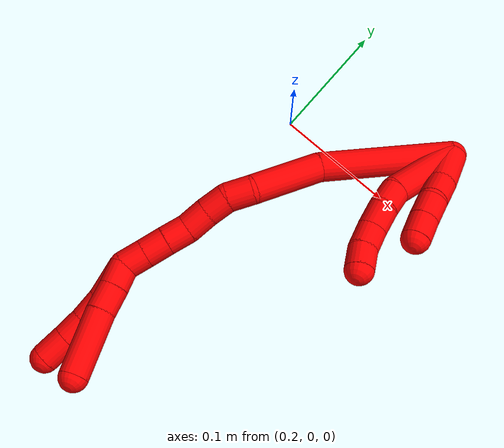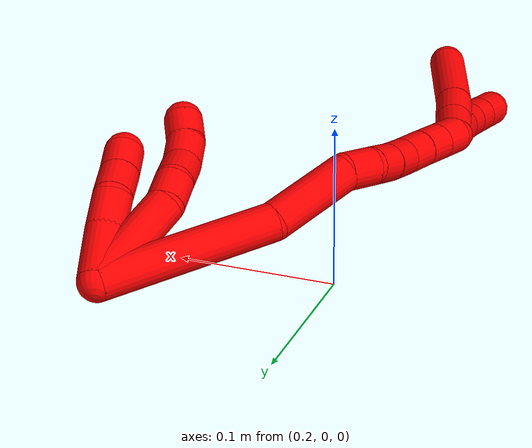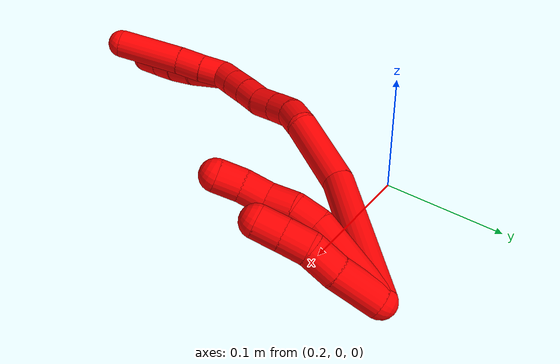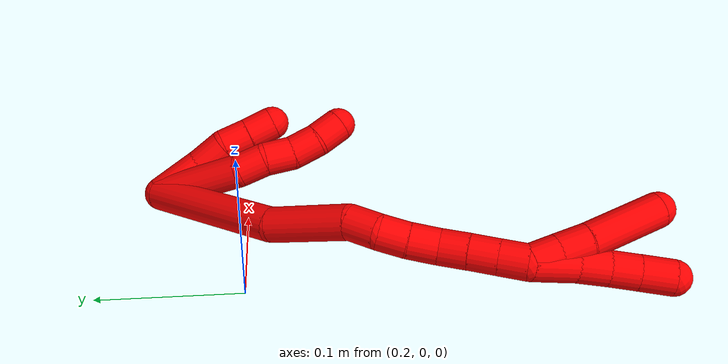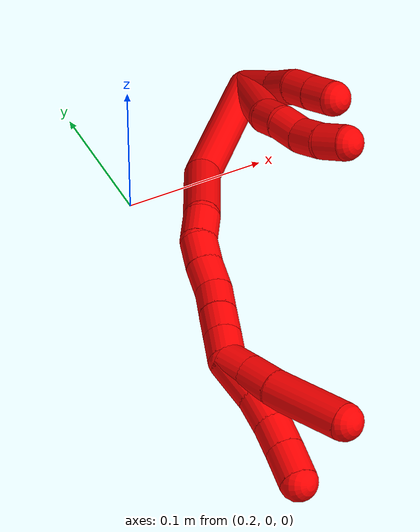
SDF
<sdf version="1.7">
 <world name="default">
  <model name="2">
   <static>0</static>
   <link name="2">
    <collision name="collision-cylinder-e_1_2_8">
     <pose>0.007614 -0.015639 -0.029075 2.64811 0.226669 0.848862</pose>
     <geometry><cylinder><radius>0.0125</radius><length>0.067761</length></cylinder></geometry>
     <surface>
      <friction><ode><mu>1.16</mu><mu2>1.16</mu2><slip1>0</slip1><slip2>0</slip2></ode></friction>
      <contact><ode><kp>1e+06</kp><kd>1</kd><max_vel>0</max_vel><min_depth>0.001</min_depth></ode></contact>
     </surface>
    </collision>
    <visual name="visual-cylinder-e_1_2_8">
     <pose>0.007614 -0.015639 -0.029075 2.64811 0.226669 0.848862</pose>
     <geometry><cylinder><radius>0.0125</radius><length>0.067761</length></cylinder></geometry>
     <material><ambient>1 0 0 1</ambient></material>
    </visual>
    <collision name="collision-cylinder-e_2_8_9">
     <pose>0.015339 -0.033477 -0.068029 2.92248 0.010993 0.099863</pose>
     <geometry><cylinder><radius>0.0125</radius><length>0.020244</length></cylinder></geometry>
     <surface>
      <friction><ode><mu>1.16</mu><mu2>1.16</mu2><slip1>0</slip1><slip2>0</slip2></ode></friction>
      <contact><ode><kp>1e+06</kp><kd>1</kd><max_vel>0</max_vel><min_depth>0.001</min_depth></ode></contact>
     </surface>
    </collision>
    <visual name="visual-cylinder-e_2_8_9">
     <pose>0.015339 -0.033477 -0.068029 2.92248 0.010993 0.099863</pose>
     <geometry><cylinder><radius>0.0125</radius><length>0.020244</length></cylinder></geometry>
     <material><ambient>1 0 0 1</ambient></material>
    </visual>
    <collision name="collision-cylinder-e_3_9_10">
     <pose>0.012768 -0.038522 -0.087687 2.8585 -0.257589 -1.47536</pose>
     <geometry><cylinder><radius>0.0125</radius><length>0.021063</length></cylinder></geometry>
     <surface>
      <friction><ode><mu>1.16</mu><mu2>1.16</mu2><slip1>0</slip1><slip2>0</slip2></ode></friction>
      <contact><ode><kp>1e+06</kp><kd>1</kd><max_vel>0</max_vel><min_depth>0.001</min_depth></ode></contact>
     </surface>
    </collision>
    <visual name="visual-cylinder-e_3_9_10">
     <pose>0.012768 -0.038522 -0.087687 2.8585 -0.257589 -1.47536</pose>
     <geometry><cylinder><radius>0.0125</radius><length>0.021063</length></cylinder></geometry>
     <material><ambient>1 0 0 1</ambient></material>
    </visual>
    <collision name="collision-cylinder-e_4_10_11">
     <pose>0.009411 -0.04235 -0.107799 3.0467 -0.064828 -1.19826</pose>
     <geometry><cylinder><radius>0.0125</radius><length>0.020803</length></cylinder></geometry>
     <surface>
      <friction><ode><mu>1.16</mu><mu2>1.16</mu2><slip1>0</slip1><slip2>0</slip2></ode></friction>
      <contact><ode><kp>1e+06</kp><kd>1</kd><max_vel>0</max_vel><min_depth>0.001</min_depth></ode></contact>
     </surface>
    </collision>
    <visual name="visual-cylinder-e_4_10_11">
     <pose>0.009411 -0.04235 -0.107799 3.0467 -0.064828 -1.19826</pose>
     <geometry><cylinder><radius>0.0125</radius><length>0.020803</length></cylinder></geometry>
     <material><ambient>1 0 0 1</ambient></material>
    </visual>
    <collision name="collision-cylinder-e_5_11_6">
     <pose>0.007385 -0.042229 -0.128044 -3.03055 -0.134768 1.76369</pose>
     <geometry><cylinder><radius>0.0125</radius><length>0.020129</length></cylinder></geometry>
     <surface>
      <friction><ode><mu>1.16</mu><mu2>1.16</mu2><slip1>0</slip1><slip2>0</slip2></ode></friction>
      <contact><ode><kp>1e+06</kp><kd>1</kd><max_vel>0</max_vel><min_depth>0.001</min_depth></ode></contact>
     </surface>
    </collision>
    <visual name="visual-cylinder-e_5_11_6">
     <pose>0.007385 -0.042229 -0.128044 -3.03055 -0.134768 1.76369</pose>
     <geometry><cylinder><radius>0.0125</radius><length>0.020129</length></cylinder></geometry>
     <material><ambient>1 0 0 1</ambient></material>
    </visual>
    <collision name="collision-cylinder-e_1_2_12">
     <pose>0.001166 -5.1e-05 -0.018027 3.13879 0.064607 3.05495</pose>
     <geometry><cylinder><radius>0.0125</radius><length>0.036129</length></cylinder></geometry>
     <surface>
      <friction><ode><mu>1.16</mu><mu2>1.16</mu2><slip1>0</slip1><slip2>0</slip2></ode></friction>
      <contact><ode><kp>1e+06</kp><kd>1</kd><max_vel>0</max_vel><min_depth>0.001</min_depth></ode></contact>
     </surface>
    </collision>
    <visual name="visual-cylinder-e_1_2_12">
     <pose>0.001166 -5.1e-05 -0.018027 3.13879 0.064607 3.05495</pose>
     <geometry><cylinder><radius>0.0125</radius><length>0.036129</length></cylinder></geometry>
     <material><ambient>1 0 0 1</ambient></material>
    </visual>
    <collision name="collision-cylinder-e_2_12_13">
     <pose>0.004687 -0.000326 -0.04759 3.12209 0.201323 2.94909</pose>
     <geometry><cylinder><radius>0.0125</radius><length>0.023552</length></cylinder></geometry>
     <surface>
      <friction><ode><mu>1.16</mu><mu2>1.16</mu2><slip1>0</slip1><slip2>0</slip2></ode></friction>
      <contact><ode><kp>1e+06</kp><kd>1</kd><max_vel>0</max_vel><min_depth>0.001</min_depth></ode></contact>
     </surface>
    </collision>
    <visual name="visual-cylinder-e_2_12_13">
     <pose>0.004687 -0.000326 -0.04759 3.12209 0.201323 2.94909</pose>
     <geometry><cylinder><radius>0.0125</radius><length>0.023552</length></cylinder></geometry>
     <material><ambient>1 0 0 1</ambient></material>
    </visual>
    <collision name="collision-cylinder-e_3_13_14">
     <pose>0.006141 -0.00197 -0.06914 3.00088 -0.088865 -1.12568</pose>
     <geometry><cylinder><radius>0.0125</radius><length>0.020309</length></cylinder></geometry>
     <surface>
      <friction><ode><mu>1.16</mu><mu2>1.16</mu2><slip1>0</slip1><slip2>0</slip2></ode></friction>
      <contact><ode><kp>1e+06</kp><kd>1</kd><max_vel>0</max_vel><min_depth>0.001</min_depth></ode></contact>
     </surface>
    </collision>
    <visual name="visual-cylinder-e_3_13_14">
     <pose>0.006141 -0.00197 -0.06914 3.00088 -0.088865 -1.12568</pose>
     <geometry><cylinder><radius>0.0125</radius><length>0.020309</length></cylinder></geometry>
     <material><ambient>1 0 0 1</ambient></material>
    </visual>
    <collision name="collision-cylinder-e_4_14_5">
     <pose>0.004258 -0.004322 -0.089067 3.04762 -0.098312 -1.61599</pose>
     <geometry><cylinder><radius>0.0125</radius><length>0.020009</length></cylinder></geometry>
     <surface>
      <friction><ode><mu>1.16</mu><mu2>1.16</mu2><slip1>0</slip1><slip2>0</slip2></ode></friction>
      <contact><ode><kp>1e+06</kp><kd>1</kd><max_vel>0</max_vel><min_depth>0.001</min_depth></ode></contact>
     </surface>
    </collision>
    <visual name="visual-cylinder-e_4_14_5">
     <pose>0.004258 -0.004322 -0.089067 3.04762 -0.098312 -1.61599</pose>
     <geometry><cylinder><radius>0.0125</radius><length>0.020009</length></cylinder></geometry>
     <material><ambient>1 0 0 1</ambient></material>
    </visual>
    <collision name="collision-cylinder-e_1_2_15">
     <pose>0.017577 -0.047404 -0.027234 2.09226 0.311076 0.529148</pose>
     <geometry><cylinder><radius>0.0125</radius><length>0.114854</length></cylinder></geometry>
     <surface>
      <friction><ode><mu>1.16</mu><mu2>1.16</mu2><slip1>0</slip1><slip2>0</slip2></ode></friction>
      <contact><ode><kp>1e+06</kp><kd>1</kd><max_vel>0</max_vel><min_depth>0.001</min_depth></ode></contact>
     </surface>
    </collision>
    <visual name="visual-cylinder-e_1_2_15">
     <pose>0.017577 -0.047404 -0.027234 2.09226 0.311076 0.529148</pose>
     <geometry><cylinder><radius>0.0125</radius><length>0.114854</length></cylinder></geometry>
     <material><ambient>1 0 0 1</ambient></material>
    </visual>
    <collision name="collision-cylinder-e_2_15_16">
     <pose>0.042861 -0.114946 -0.076326 2.39714 0.253701 0.631453</pose>
     <geometry><cylinder><radius>0.0125</radius><length>0.061406</length></cylinder></geometry>
     <surface>
      <friction><ode><mu>1.16</mu><mu2>1.16</mu2><slip1>0</slip1><slip2>0</slip2></ode></friction>
      <contact><ode><kp>1e+06</kp><kd>1</kd><max_vel>0</max_vel><min_depth>0.001</min_depth></ode></contact>
     </surface>
    </collision>
    <visual name="visual-cylinder-e_2_15_16">
     <pose>0.042861 -0.114946 -0.076326 2.39714 0.253701 0.631453</pose>
     <geometry><cylinder><radius>0.0125</radius><length>0.061406</length></cylinder></geometry>
     <material><ambient>1 0 0 1</ambient></material>
    </visual>
    <collision name="collision-cylinder-e_3_16_17">
     <pose>0.051138 -0.14453 -0.103971 2.1204 0.051542 0.091971</pose>
     <geometry><cylinder><radius>0.0125</radius><length>0.022185</length></cylinder></geometry>
     <surface>
      <friction><ode><mu>1.16</mu><mu2>1.16</mu2><slip1>0</slip1><slip2>0</slip2></ode></friction>
      <contact><ode><kp>1e+06</kp><kd>1</kd><max_vel>0</max_vel><min_depth>0.001</min_depth></ode></contact>
     </surface>
    </collision>
    <visual name="visual-cylinder-e_3_16_17">
     <pose>0.051138 -0.14453 -0.103971 2.1204 0.051542 0.091971</pose>
     <geometry><cylinder><radius>0.0125</radius><length>0.022185</length></cylinder></geometry>
     <material><ambient>1 0 0 1</ambient></material>
    </visual>
    <collision name="collision-cylinder-e_4_17_18">
     <pose>0.049232 -0.161404 -0.116017 2.27105 -0.24972 -0.527254</pose>
     <geometry><cylinder><radius>0.0125</radius><length>0.02005</length></cylinder></geometry>
     <surface>
      <friction><ode><mu>1.16</mu><mu2>1.16</mu2><slip1>0</slip1><slip2>0</slip2></ode></friction>
      <contact><ode><kp>1e+06</kp><kd>1</kd><max_vel>0</max_vel><min_depth>0.001</min_depth></ode></contact>
     </surface>
    </collision>
    <visual name="visual-cylinder-e_4_17_18">
     <pose>0.049232 -0.161404 -0.116017 2.27105 -0.24972 -0.527254</pose>
     <geometry><cylinder><radius>0.0125</radius><length>0.02005</length></cylinder></geometry>
     <material><ambient>1 0 0 1</ambient></material>
    </visual>
    <collision name="collision-cylinder-e_5_18_19">
     <pose>0.043958 -0.17596 -0.129575 2.36806 -0.267626 -0.638449</pose>
     <geometry><cylinder><radius>0.0125</radius><length>0.021157</length></cylinder></geometry>
     <surface>
      <friction><ode><mu>1.16</mu><mu2>1.16</mu2><slip1>0</slip1><slip2>0</slip2></ode></friction>
      <contact><ode><kp>1e+06</kp><kd>1</kd><max_vel>0</max_vel><min_depth>0.001</min_depth></ode></contact>
     </surface>
    </collision>
    <visual name="visual-cylinder-e_5_18_19">
     <pose>0.043958 -0.17596 -0.129575 2.36806 -0.267626 -0.638449</pose>
     <geometry><cylinder><radius>0.0125</radius><length>0.021157</length></cylinder></geometry>
     <material><ambient>1 0 0 1</ambient></material>
    </visual>
    <collision name="collision-cylinder-e_6_19_20">
     <pose>0.040605 -0.190448 -0.143793 2.3253 -0.054898 -0.126813</pose>
     <geometry><cylinder><radius>0.0125</radius><length>0.020233</length></cylinder></geometry>
     <surface>
      <friction><ode><mu>1.16</mu><mu2>1.16</mu2><slip1>0</slip1><slip2>0</slip2></ode></friction>
      <contact><ode><kp>1e+06</kp><kd>1</kd><max_vel>0</max_vel><min_depth>0.001</min_depth></ode></contact>
     </surface>
    </collision>
    <visual name="visual-cylinder-e_6_19_20">
     <pose>0.040605 -0.190448 -0.143793 2.3253 -0.054898 -0.126813</pose>
     <geometry><cylinder><radius>0.0125</radius><length>0.020233</length></cylinder></geometry>
     <material><ambient>1 0 0 1</ambient></material>
    </visual>
    <collision name="collision-cylinder-e_7_20_21">
     <pose>0.039137 -0.205118 -0.157512 2.32012 -0.091171 -0.20873</pose>
     <geometry><cylinder><radius>0.0125</radius><length>0.020053</length></cylinder></geometry>
     <surface>
      <friction><ode><mu>1.16</mu><mu2>1.16</mu2><slip1>0</slip1><slip2>0</slip2></ode></friction>
      <contact><ode><kp>1e+06</kp><kd>1</kd><max_vel>0</max_vel><min_depth>0.001</min_depth></ode></contact>
     </surface>
    </collision>
    <visual name="visual-cylinder-e_7_20_21">
     <pose>0.039137 -0.205118 -0.157512 2.32012 -0.091171 -0.20873</pose>
     <geometry><cylinder><radius>0.0125</radius><length>0.020053</length></cylinder></geometry>
     <material><ambient>1 0 0 1</ambient></material>
    </visual>
    <collision name="collision-cylinder-e_8_21_1">
     <pose>0.037455 -0.219757 -0.171121 2.31932 -0.076735 -0.175638</pose>
     <geometry><cylinder><radius>0.0125</radius><length>0.020063</length></cylinder></geometry>
     <surface>
      <friction><ode><mu>1.16</mu><mu2>1.16</mu2><slip1>0</slip1><slip2>0</slip2></ode></friction>
      <contact><ode><kp>1e+06</kp><kd>1</kd><max_vel>0</max_vel><min_depth>0.001</min_depth></ode></contact>
     </surface>
    </collision>
    <visual name="visual-cylinder-e_8_21_1">
     <pose>0.037455 -0.219757 -0.171121 2.31932 -0.076735 -0.175638</pose>
     <geometry><cylinder><radius>0.0125</radius><length>0.020063</length></cylinder></geometry>
     <material><ambient>1 0 0 1</ambient></material>
    </visual>
    <collision name="collision-cylinder-e_1_1_22">
     <pose>0.029523 -0.234177 -0.190679 2.63405 -0.456397 -1.46058</pose>
     <geometry><cylinder><radius>0.0125</radius><length>0.032509</length></cylinder></geometry>
     <surface>
      <friction><ode><mu>1.16</mu><mu2>1.16</mu2><slip1>0</slip1><slip2>0</slip2></ode></friction>
      <contact><ode><kp>1e+06</kp><kd>1</kd><max_vel>0</max_vel><min_depth>0.001</min_depth></ode></contact>
     </surface>
    </collision>
    <visual name="visual-cylinder-e_1_1_22">
     <pose>0.029523 -0.234177 -0.190679 2.63405 -0.456397 -1.46058</pose>
     <geometry><cylinder><radius>0.0125</radius><length>0.032509</length></cylinder></geometry>
     <material><ambient>1 0 0 1</ambient></material>
    </visual>
    <collision name="collision-cylinder-e_2_22_23">
     <pose>0.018328 -0.24759 -0.211848 2.49738 -0.365744 -1.01205</pose>
     <geometry><cylinder><radius>0.0125</radius><length>0.022545</length></cylinder></geometry>
     <surface>
      <friction><ode><mu>1.16</mu><mu2>1.16</mu2><slip1>0</slip1><slip2>0</slip2></ode></friction>
      <contact><ode><kp>1e+06</kp><kd>1</kd><max_vel>0</max_vel><min_depth>0.001</min_depth></ode></contact>
     </surface>
    </collision>
    <visual name="visual-cylinder-e_2_22_23">
     <pose>0.018328 -0.24759 -0.211848 2.49738 -0.365744 -1.01205</pose>
     <geometry><cylinder><radius>0.0125</radius><length>0.022545</length></cylinder></geometry>
     <material><ambient>1 0 0 1</ambient></material>
    </visual>
    <collision name="collision-cylinder-e_3_23_24">
     <pose>0.011308 -0.260326 -0.227898 2.44279 -0.291144 -0.765124</pose>
     <geometry><cylinder><radius>0.0125</radius><length>0.020817</length></cylinder></geometry>
     <surface>
      <friction><ode><mu>1.16</mu><mu2>1.16</mu2><slip1>0</slip1><slip2>0</slip2></ode></friction>
      <contact><ode><kp>1e+06</kp><kd>1</kd><max_vel>0</max_vel><min_depth>0.001</min_depth></ode></contact>
     </surface>
    </collision>
    <visual name="visual-cylinder-e_3_23_24">
     <pose>0.011308 -0.260326 -0.227898 2.44279 -0.291144 -0.765124</pose>
     <geometry><cylinder><radius>0.0125</radius><length>0.020817</length></cylinder></geometry>
     <material><ambient>1 0 0 1</ambient></material>
    </visual>
    <collision name="collision-cylinder-e_4_24_4">
     <pose>0.00514 -0.274368 -0.244321 2.42685 -0.266763 -0.689936</pose>
     <geometry><cylinder><radius>0.0125</radius><length>0.02413</length></cylinder></geometry>
     <surface>
      <friction><ode><mu>1.16</mu><mu2>1.16</mu2><slip1>0</slip1><slip2>0</slip2></ode></friction>
      <contact><ode><kp>1e+06</kp><kd>1</kd><max_vel>0</max_vel><min_depth>0.001</min_depth></ode></contact>
     </surface>
    </collision>
    <visual name="visual-cylinder-e_4_24_4">
     <pose>0.00514 -0.274368 -0.244321 2.42685 -0.266763 -0.689936</pose>
     <geometry><cylinder><radius>0.0125</radius><length>0.02413</length></cylinder></geometry>
     <material><ambient>1 0 0 1</ambient></material>
    </visual>
    <collision name="collision-cylinder-e_1_1_25">
     <pose>0.033983 -0.228697 -0.187614 2.97671 -0.268671 -2.04411</pose>
     <geometry><cylinder><radius>0.0125</radius><length>0.02037</length></cylinder></geometry>
     <surface>
      <friction><ode><mu>1.16</mu><mu2>1.16</mu2><slip1>0</slip1><slip2>0</slip2></ode></friction>
      <contact><ode><kp>1e+06</kp><kd>1</kd><max_vel>0</max_vel><min_depth>0.001</min_depth></ode></contact>
     </surface>
    </collision>
    <visual name="visual-cylinder-e_1_1_25">
     <pose>0.033983 -0.228697 -0.187614 2.97671 -0.268671 -2.04411</pose>
     <geometry><cylinder><radius>0.0125</radius><length>0.02037</length></cylinder></geometry>
     <material><ambient>1 0 0 1</ambient></material>
    </visual>
    <collision name="collision-cylinder-e_2_25_26">
     <pose>0.028704 -0.232426 -0.208232 2.95027 -0.227304 -1.74351</pose>
     <geometry><cylinder><radius>0.0125</radius><length>0.022857</length></cylinder></geometry>
     <surface>
      <friction><ode><mu>1.16</mu><mu2>1.16</mu2><slip1>0</slip1><slip2>0</slip2></ode></friction>
      <contact><ode><kp>1e+06</kp><kd>1</kd><max_vel>0</max_vel><min_depth>0.001</min_depth></ode></contact>
     </surface>
    </collision>
    <visual name="visual-cylinder-e_2_25_26">
     <pose>0.028704 -0.232426 -0.208232 2.95027 -0.227304 -1.74351</pose>
     <geometry><cylinder><radius>0.0125</radius><length>0.022857</length></cylinder></geometry>
     <material><ambient>1 0 0 1</ambient></material>
    </visual>
    <collision name="collision-cylinder-e_3_26_3">
     <pose>0.01853 -0.237381 -0.246367 3.03766 -0.27098 -2.41259</pose>
     <geometry><cylinder><radius>0.0125</radius><length>0.056773</length></cylinder></geometry>
     <surface>
      <friction><ode><mu>1.16</mu><mu2>1.16</mu2><slip1>0</slip1><slip2>0</slip2></ode></friction>
      <contact><ode><kp>1e+06</kp><kd>1</kd><max_vel>0</max_vel><min_depth>0.001</min_depth></ode></contact>
     </surface>
    </collision>
    <visual name="visual-cylinder-e_3_26_3">
     <pose>0.01853 -0.237381 -0.246367 3.03766 -0.27098 -2.41259</pose>
     <geometry><cylinder><radius>0.0125</radius><length>0.056773</length></cylinder></geometry>
     <material><ambient>1 0 0 1</ambient></material>
    </visual>
    <collision name="collision-sphere-3">
     <pose>0.010931 -0.240219 -0.273569 0 -0 0</pose>
     <geometry><sphere><radius>0.0125</radius></sphere></geometry>
     <surface>
      <friction><ode><mu>1.16</mu><mu2>1.16</mu2><slip1>0</slip1><slip2>0</slip2></ode></friction>
      <contact><ode><kp>1e+06</kp><kd>1</kd><max_vel>0</max_vel><min_depth>0.001</min_depth></ode></contact>
     </surface>
    </collision>
    <visual name="visual-sphere-3">
     <pose>0.010931 -0.240219 -0.273569 0 -0 0</pose>
     <geometry><sphere><radius>0.0125</radius></sphere></geometry>
     <material><ambient>1 0 0 1</ambient></material>
    </visual>
    <collision name="collision-sphere-26">
     <pose>0.026128 -0.234543 -0.219164 0 -0 0</pose>
     <geometry><sphere><radius>0.0125</radius></sphere></geometry>
     <surface>
      <friction><ode><mu>1.16</mu><mu2>1.16</mu2><slip1>0</slip1><slip2>0</slip2></ode></friction>
      <contact><ode><kp>1e+06</kp><kd>1</kd><max_vel>0</max_vel><min_depth>0.001</min_depth></ode></contact>
     </surface>
    </collision>
    <visual name="visual-sphere-26">
     <pose>0.026128 -0.234543 -0.219164 0 -0 0</pose>
     <geometry><sphere><radius>0.0125</radius></sphere></geometry>
     <material><ambient>1 0 0 1</ambient></material>
    </visual>
    <collision name="collision-sphere-25">
     <pose>0.031279 -0.230309 -0.197301 0 -0 0</pose>
     <geometry><sphere><radius>0.0125</radius></sphere></geometry>
     <surface>
      <friction><ode><mu>1.16</mu><mu2>1.16</mu2><slip1>0</slip1><slip2>0</slip2></ode></friction>
      <contact><ode><kp>1e+06</kp><kd>1</kd><max_vel>0</max_vel><min_depth>0.001</min_depth></ode></contact>
     </surface>
    </collision>
    <visual name="visual-sphere-25">
     <pose>0.031279 -0.230309 -0.197301 0 -0 0</pose>
     <geometry><sphere><radius>0.0125</radius></sphere></geometry>
     <material><ambient>1 0 0 1</ambient></material>
    </visual>
    <collision name="collision-sphere-4">
     <pose>0.00196 -0.281996 -0.253111 0 -0 0</pose>
     <geometry><sphere><radius>0.0125</radius></sphere></geometry>
     <surface>
      <friction><ode><mu>1.16</mu><mu2>1.16</mu2><slip1>0</slip1><slip2>0</slip2></ode></friction>
      <contact><ode><kp>1e+06</kp><kd>1</kd><max_vel>0</max_vel><min_depth>0.001</min_depth></ode></contact>
     </surface>
    </collision>
    <visual name="visual-sphere-4">
     <pose>0.00196 -0.281996 -0.253111 0 -0 0</pose>
     <geometry><sphere><radius>0.0125</radius></sphere></geometry>
     <material><ambient>1 0 0 1</ambient></material>
    </visual>
    <collision name="collision-sphere-24">
     <pose>0.008321 -0.26674 -0.235531 0 -0 0</pose>
     <geometry><sphere><radius>0.0125</radius></sphere></geometry>
     <surface>
      <friction><ode><mu>1.16</mu><mu2>1.16</mu2><slip1>0</slip1><slip2>0</slip2></ode></friction>
      <contact><ode><kp>1e+06</kp><kd>1</kd><max_vel>0</max_vel><min_depth>0.001</min_depth></ode></contact>
     </surface>
    </collision>
    <visual name="visual-sphere-24">
     <pose>0.008321 -0.26674 -0.235531 0 -0 0</pose>
     <geometry><sphere><radius>0.0125</radius></sphere></geometry>
     <material><ambient>1 0 0 1</ambient></material>
    </visual>
    <collision name="collision-sphere-23">
     <pose>0.014296 -0.253912 -0.220264 0 -0 0</pose>
     <geometry><sphere><radius>0.0125</radius></sphere></geometry>
     <surface>
      <friction><ode><mu>1.16</mu><mu2>1.16</mu2><slip1>0</slip1><slip2>0</slip2></ode></friction>
      <contact><ode><kp>1e+06</kp><kd>1</kd><max_vel>0</max_vel><min_depth>0.001</min_depth></ode></contact>
     </surface>
    </collision>
    <visual name="visual-sphere-23">
     <pose>0.014296 -0.253912 -0.220264 0 -0 0</pose>
     <geometry><sphere><radius>0.0125</radius></sphere></geometry>
     <material><ambient>1 0 0 1</ambient></material>
    </visual>
    <collision name="collision-sphere-22">
     <pose>0.022359 -0.241268 -0.203431 0 -0 0</pose>
     <geometry><sphere><radius>0.0125</radius></sphere></geometry>
     <surface>
      <friction><ode><mu>1.16</mu><mu2>1.16</mu2><slip1>0</slip1><slip2>0</slip2></ode></friction>
      <contact><ode><kp>1e+06</kp><kd>1</kd><max_vel>0</max_vel><min_depth>0.001</min_depth></ode></contact>
     </surface>
    </collision>
    <visual name="visual-sphere-22">
     <pose>0.022359 -0.241268 -0.203431 0 -0 0</pose>
     <geometry><sphere><radius>0.0125</radius></sphere></geometry>
     <material><ambient>1 0 0 1</ambient></material>
    </visual>
    <collision name="collision-sphere-1">
     <pose>0.036686 -0.227085 -0.177928 0 -0 0</pose>
     <geometry><sphere><radius>0.0125</radius></sphere></geometry>
     <surface>
      <friction><ode><mu>1.16</mu><mu2>1.16</mu2><slip1>0</slip1><slip2>0</slip2></ode></friction>
      <contact><ode><kp>1e+06</kp><kd>1</kd><max_vel>0</max_vel><min_depth>0.001</min_depth></ode></contact>
     </surface>
    </collision>
    <visual name="visual-sphere-1">
     <pose>0.036686 -0.227085 -0.177928 0 -0 0</pose>
     <geometry><sphere><radius>0.0125</radius></sphere></geometry>
     <material><ambient>1 0 0 1</ambient></material>
    </visual>
    <collision name="collision-sphere-21">
     <pose>0.038224 -0.212428 -0.164314 0 -0 0</pose>
     <geometry><sphere><radius>0.0125</radius></sphere></geometry>
     <surface>
      <friction><ode><mu>1.16</mu><mu2>1.16</mu2><slip1>0</slip1><slip2>0</slip2></ode></friction>
      <contact><ode><kp>1e+06</kp><kd>1</kd><max_vel>0</max_vel><min_depth>0.001</min_depth></ode></contact>
     </surface>
    </collision>
    <visual name="visual-sphere-21">
     <pose>0.038224 -0.212428 -0.164314 0 -0 0</pose>
     <geometry><sphere><radius>0.0125</radius></sphere></geometry>
     <material><ambient>1 0 0 1</ambient></material>
    </visual>
    <collision name="collision-sphere-6">
     <pose>0.006033 -0.041123 -0.137955 0 -0 0</pose>
     <geometry><sphere><radius>0.0125</radius></sphere></geometry>
     <surface>
      <friction><ode><mu>1.16</mu><mu2>1.16</mu2><slip1>0</slip1><slip2>0</slip2></ode></friction>
      <contact><ode><kp>1e+06</kp><kd>1</kd><max_vel>0</max_vel><min_depth>0.001</min_depth></ode></contact>
     </surface>
    </collision>
    <visual name="visual-sphere-6">
     <pose>0.006033 -0.041123 -0.137955 0 -0 0</pose>
     <geometry><sphere><radius>0.0125</radius></sphere></geometry>
     <material><ambient>1 0 0 1</ambient></material>
    </visual>
    <collision name="collision-sphere-11">
     <pose>0.008737 -0.043334 -0.118132 0 -0 0</pose>
     <geometry><sphere><radius>0.0125</radius></sphere></geometry>
     <surface>
      <friction><ode><mu>1.16</mu><mu2>1.16</mu2><slip1>0</slip1><slip2>0</slip2></ode></friction>
      <contact><ode><kp>1e+06</kp><kd>1</kd><max_vel>0</max_vel><min_depth>0.001</min_depth></ode></contact>
     </surface>
    </collision>
    <visual name="visual-sphere-11">
     <pose>0.008737 -0.043334 -0.118132 0 -0 0</pose>
     <geometry><sphere><radius>0.0125</radius></sphere></geometry>
     <material><ambient>1 0 0 1</ambient></material>
    </visual>
    <collision name="collision-sphere-10">
     <pose>0.010085 -0.041367 -0.097466 0 -0 0</pose>
     <geometry><sphere><radius>0.0125</radius></sphere></geometry>
     <surface>
      <friction><ode><mu>1.16</mu><mu2>1.16</mu2><slip1>0</slip1><slip2>0</slip2></ode></friction>
      <contact><ode><kp>1e+06</kp><kd>1</kd><max_vel>0</max_vel><min_depth>0.001</min_depth></ode></contact>
     </surface>
    </collision>
    <visual name="visual-sphere-10">
     <pose>0.010085 -0.041367 -0.097466 0 -0 0</pose>
     <geometry><sphere><radius>0.0125</radius></sphere></geometry>
     <material><ambient>1 0 0 1</ambient></material>
    </visual>
    <collision name="collision-sphere-9">
     <pose>0.015451 -0.035677 -0.077908 0 -0 0</pose>
     <geometry><sphere><radius>0.0125</radius></sphere></geometry>
     <surface>
      <friction><ode><mu>1.16</mu><mu2>1.16</mu2><slip1>0</slip1><slip2>0</slip2></ode></friction>
      <contact><ode><kp>1e+06</kp><kd>1</kd><max_vel>0</max_vel><min_depth>0.001</min_depth></ode></contact>
     </surface>
    </collision>
    <visual name="visual-sphere-9">
     <pose>0.015451 -0.035677 -0.077908 0 -0 0</pose>
     <geometry><sphere><radius>0.0125</radius></sphere></geometry>
     <material><ambient>1 0 0 1</ambient></material>
    </visual>
    <collision name="collision-sphere-2">
     <geometry><sphere><radius>0.0125</radius></sphere></geometry>
     <surface>
      <friction><ode><mu>1.16</mu><mu2>1.16</mu2><slip1>0</slip1><slip2>0</slip2></ode></friction>
      <contact><ode><kp>1e+06</kp><kd>1</kd><max_vel>0</max_vel><min_depth>0.001</min_depth></ode></contact>
     </surface>
    </collision>
    <visual name="visual-sphere-2">
     <geometry><sphere><radius>0.0125</radius></sphere></geometry>
     <material><ambient>1 0 0 1</ambient></material>
    </visual>
    <collision name="collision-sphere-19">
     <pose>0.04116 -0.183088 -0.136874 0 -0 0</pose>
     <geometry><sphere><radius>0.0125</radius></sphere></geometry>
     <surface>
      <friction><ode><mu>1.16</mu><mu2>1.16</mu2><slip1>0</slip1><slip2>0</slip2></ode></friction>
      <contact><ode><kp>1e+06</kp><kd>1</kd><max_vel>0</max_vel><min_depth>0.001</min_depth></ode></contact>
     </surface>
    </collision>
    <visual name="visual-sphere-19">
     <pose>0.04116 -0.183088 -0.136874 0 -0 0</pose>
     <geometry><sphere><radius>0.0125</radius></sphere></geometry>
     <material><ambient>1 0 0 1</ambient></material>
    </visual>
    <collision name="collision-sphere-8">
     <pose>0.015228 -0.031277 -0.05815 0 -0 0</pose>
     <geometry><sphere><radius>0.0125</radius></sphere></geometry>
     <surface>
      <friction><ode><mu>1.16</mu><mu2>1.16</mu2><slip1>0</slip1><slip2>0</slip2></ode></friction>
      <contact><ode><kp>1e+06</kp><kd>1</kd><max_vel>0</max_vel><min_depth>0.001</min_depth></ode></contact>
     </surface>
    </collision>
    <visual name="visual-sphere-8">
     <pose>0.015228 -0.031277 -0.05815 0 -0 0</pose>
     <geometry><sphere><radius>0.0125</radius></sphere></geometry>
     <material><ambient>1 0 0 1</ambient></material>
    </visual>
    <collision name="collision-sphere-12">
     <pose>0.002333 -0.000101 -0.036054 0 -0 0</pose>
     <geometry><sphere><radius>0.0125</radius></sphere></geometry>
     <surface>
      <friction><ode><mu>1.16</mu><mu2>1.16</mu2><slip1>0</slip1><slip2>0</slip2></ode></friction>
      <contact><ode><kp>1e+06</kp><kd>1</kd><max_vel>0</max_vel><min_depth>0.001</min_depth></ode></contact>
     </surface>
    </collision>
    <visual name="visual-sphere-12">
     <pose>0.002333 -0.000101 -0.036054 0 -0 0</pose>
     <geometry><sphere><radius>0.0125</radius></sphere></geometry>
     <material><ambient>1 0 0 1</ambient></material>
    </visual>
    <collision name="collision-sphere-13">
     <pose>0.007042 -0.000551 -0.059126 0 -0 0</pose>
     <geometry><sphere><radius>0.0125</radius></sphere></geometry>
     <surface>
      <friction><ode><mu>1.16</mu><mu2>1.16</mu2><slip1>0</slip1><slip2>0</slip2></ode></friction>
      <contact><ode><kp>1e+06</kp><kd>1</kd><max_vel>0</max_vel><min_depth>0.001</min_depth></ode></contact>
     </surface>
    </collision>
    <visual name="visual-sphere-13">
     <pose>0.007042 -0.000551 -0.059126 0 -0 0</pose>
     <geometry><sphere><radius>0.0125</radius></sphere></geometry>
     <material><ambient>1 0 0 1</ambient></material>
    </visual>
    <collision name="collision-sphere-14">
     <pose>0.00524 -0.003388 -0.079155 0 -0 0</pose>
     <geometry><sphere><radius>0.0125</radius></sphere></geometry>
     <surface>
      <friction><ode><mu>1.16</mu><mu2>1.16</mu2><slip1>0</slip1><slip2>0</slip2></ode></friction>
      <contact><ode><kp>1e+06</kp><kd>1</kd><max_vel>0</max_vel><min_depth>0.001</min_depth></ode></contact>
     </surface>
    </collision>
    <visual name="visual-sphere-14">
     <pose>0.00524 -0.003388 -0.079155 0 -0 0</pose>
     <geometry><sphere><radius>0.0125</radius></sphere></geometry>
     <material><ambient>1 0 0 1</ambient></material>
    </visual>
    <collision name="collision-sphere-5">
     <pose>0.003276 -0.005257 -0.09898 0 -0 0</pose>
     <geometry><sphere><radius>0.0125</radius></sphere></geometry>
     <surface>
      <friction><ode><mu>1.16</mu><mu2>1.16</mu2><slip1>0</slip1><slip2>0</slip2></ode></friction>
      <contact><ode><kp>1e+06</kp><kd>1</kd><max_vel>0</max_vel><min_depth>0.001</min_depth></ode></contact>
     </surface>
    </collision>
    <visual name="visual-sphere-5">
     <pose>0.003276 -0.005257 -0.09898 0 -0 0</pose>
     <geometry><sphere><radius>0.0125</radius></sphere></geometry>
     <material><ambient>1 0 0 1</ambient></material>
    </visual>
    <collision name="collision-sphere-15">
     <pose>0.035155 -0.094809 -0.054468 0 -0 0</pose>
     <geometry><sphere><radius>0.0125</radius></sphere></geometry>
     <surface>
      <friction><ode><mu>1.16</mu><mu2>1.16</mu2><slip1>0</slip1><slip2>0</slip2></ode></friction>
      <contact><ode><kp>1e+06</kp><kd>1</kd><max_vel>0</max_vel><min_depth>0.001</min_depth></ode></contact>
     </surface>
    </collision>
    <visual name="visual-sphere-15">
     <pose>0.035155 -0.094809 -0.054468 0 -0 0</pose>
     <geometry><sphere><radius>0.0125</radius></sphere></geometry>
     <material><ambient>1 0 0 1</ambient></material>
    </visual>
    <collision name="collision-sphere-16">
     <pose>0.050567 -0.135084 -0.098184 0 -0 0</pose>
     <geometry><sphere><radius>0.0125</radius></sphere></geometry>
     <surface>
      <friction><ode><mu>1.16</mu><mu2>1.16</mu2><slip1>0</slip1><slip2>0</slip2></ode></friction>
      <contact><ode><kp>1e+06</kp><kd>1</kd><max_vel>0</max_vel><min_depth>0.001</min_depth></ode></contact>
     </surface>
    </collision>
    <visual name="visual-sphere-16">
     <pose>0.050567 -0.135084 -0.098184 0 -0 0</pose>
     <geometry><sphere><radius>0.0125</radius></sphere></geometry>
     <material><ambient>1 0 0 1</ambient></material>
    </visual>
    <collision name="collision-sphere-17">
     <pose>0.05171 -0.153976 -0.109757 0 -0 0</pose>
     <geometry><sphere><radius>0.0125</radius></sphere></geometry>
     <surface>
      <friction><ode><mu>1.16</mu><mu2>1.16</mu2><slip1>0</slip1><slip2>0</slip2></ode></friction>
      <contact><ode><kp>1e+06</kp><kd>1</kd><max_vel>0</max_vel><min_depth>0.001</min_depth></ode></contact>
     </surface>
    </collision>
    <visual name="visual-sphere-17">
     <pose>0.05171 -0.153976 -0.109757 0 -0 0</pose>
     <geometry><sphere><radius>0.0125</radius></sphere></geometry>
     <material><ambient>1 0 0 1</ambient></material>
    </visual>
    <collision name="collision-sphere-18">
     <pose>0.046755 -0.168832 -0.122276 0 -0 0</pose>
     <geometry><sphere><radius>0.0125</radius></sphere></geometry>
     <surface>
      <friction><ode><mu>1.16</mu><mu2>1.16</mu2><slip1>0</slip1><slip2>0</slip2></ode></friction>
      <contact><ode><kp>1e+06</kp><kd>1</kd><max_vel>0</max_vel><min_depth>0.001</min_depth></ode></contact>
     </surface>
    </collision>
    <visual name="visual-sphere-18">
     <pose>0.046755 -0.168832 -0.122276 0 -0 0</pose>
     <geometry><sphere><radius>0.0125</radius></sphere></geometry>
     <material><ambient>1 0 0 1</ambient></material>
    </visual>
    <collision name="collision-sphere-20">
     <pose>0.04005 -0.197807 -0.150711 0 -0 0</pose>
     <geometry><sphere><radius>0.0125</radius></sphere></geometry>
     <surface>
      <friction><ode><mu>1.16</mu><mu2>1.16</mu2><slip1>0</slip1><slip2>0</slip2></ode></friction>
      <contact><ode><kp>1e+06</kp><kd>1</kd><max_vel>0</max_vel><min_depth>0.001</min_depth></ode></contact>
     </surface>
    </collision>
    <visual name="visual-sphere-20">
     <pose>0.04005 -0.197807 -0.150711 0 -0 0</pose>
     <geometry><sphere><radius>0.0125</radius></sphere></geometry>
     <material><ambient>1 0 0 1</ambient></material>
    </visual>
    <inertial>
     <pose>0.021327 -0.117522 -0.111794 0 -0 0</pose>
     <mass>0.75</mass>
     <inertia><ixx>0.000205</ixx><ixy>0</ixy><ixz>0</ixz><iyy>-9e-06</iyy><iyz>0</iyz><izz>6.3e-05</izz></inertia>
    </inertial>
   </link>
   <pose>0.323118 0.065389 0.011495 2.40331 -0.922524 2.75796</pose>
  </model>
 </world>
</sdf>
